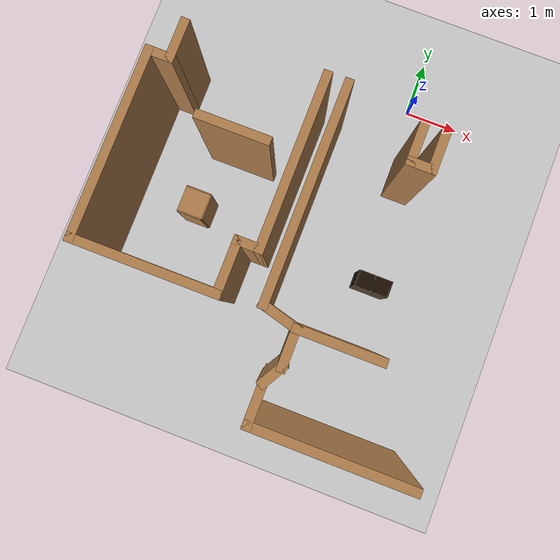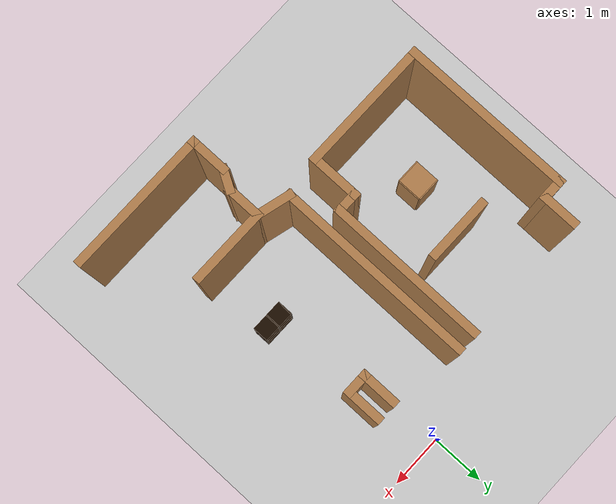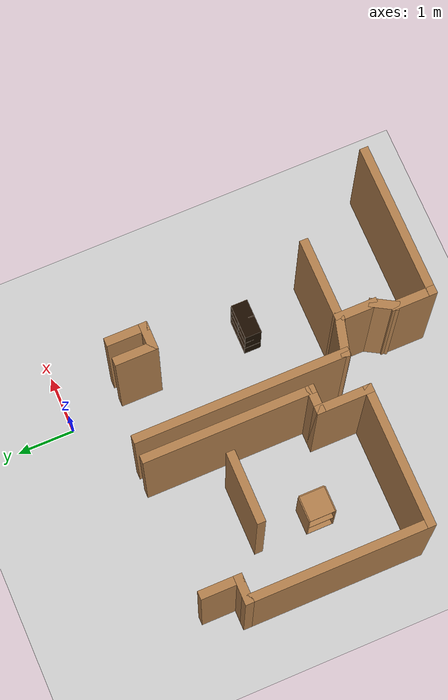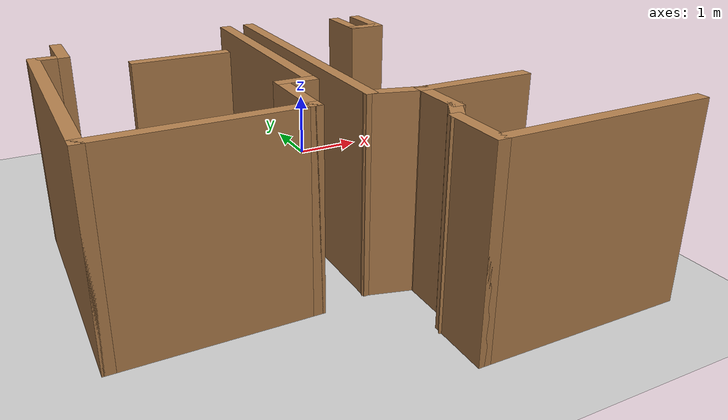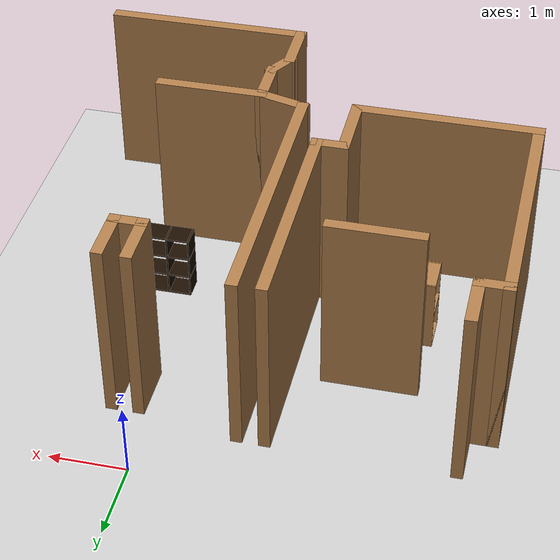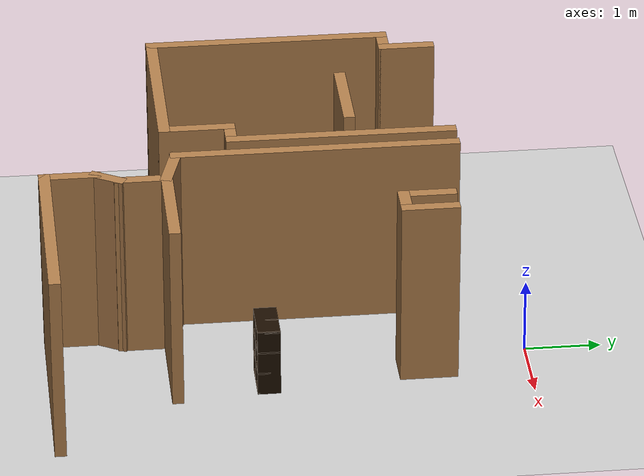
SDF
<sdf version="1.6">
 <world name="default">
  <model name="ground_plane">
   <static>1</static>
   <link name="link">
    <collision name="collision">
     <geometry><plane><normal>0 0 1</normal><size>100 100</size></plane></geometry>
     <surface><friction><ode><mu>100</mu><mu2>50</mu2></ode></friction></surface>
    </collision>
    <visual name="visual">
     <cast_shadows>0</cast_shadows>
     <geometry><plane><normal>0 0 1</normal><size>100 100</size></plane></geometry>
     <material>
      <script><uri>file://media/materials/scripts/gazebo.material</uri><name>Gazebo/Grey</name></script>
     </material>
    </visual>
   </link>
  </model>
  <model name="map_30">
   <link name="Wall_189">
    <pose>-2.30374 -1.6337 0 0 -0 3.14159</pose>
    <visual name="Wall_189_Visual">
     <pose>0 0 1.25 0 -0 0</pose>
     <geometry><box><size>1.25 0.15 2.5</size></box></geometry>
     <material>
      <script><uri>file://media/materials/scripts/gazebo.material</uri><name>Gazebo/Wood</name></script>
      <ambient>1 1 1 1</ambient>
      <shader type="pixel"/>
     </material>
     <meta><layer>0</layer></meta>
    </visual>
    <collision name="Wall_189_Collision">
     <pose>0 0 1.25 0 -0 0</pose>
     <geometry><box><size>1.25 0.15 2.5</size></box></geometry>
     <surface>
      <friction>
       <ode><mu>1</mu><mu2>1</mu2><fdir1>0 0 0</fdir1><slip1>0</slip1><slip2>0</slip2></ode>
       <torsional>
        <coefficient>1</coefficient>
        <patch_radius>0</patch_radius>
        <surface_radius>0</surface_radius>
        <use_patch_radius>1</use_patch_radius>
        <ode><slip>0</slip></ode>
       </torsional>
      </friction>
      <bounce><restitution_coefficient>0</restitution_coefficient><threshold>1e+06</threshold></bounce>
      <contact>
       <collide_without_contact>0</collide_without_contact>
       <collide_without_contact_bitmask>1</collide_without_contact_bitmask>
       <collide_bitmask>1</collide_bitmask>
       <ode>
        <soft_cfm>0</soft_cfm>
        <soft_erp>0.2</soft_erp>
        <kp>1e+13</kp>
        <kd>1</kd>
        <max_vel>0.01</max_vel>
        <min_depth>0</min_depth>
       </ode>
       <bullet>
        <split_impulse>1</split_impulse>
        <split_impulse_penetration_threshold>-0.01</split_impulse_penetration_threshold>
        <soft_cfm>0</soft_cfm>
        <soft_erp>0.2</soft_erp>
        <kp>1e+13</kp>
        <kd>1</kd>
       </bullet>
      </contact>
     </surface>
    </collision>
   </link>
   <link name="Wall_191">
    <pose>0.350366 -4.11681 0 0 -0 0</pose>
    <visual name="Wall_191_Visual">
     <pose>0 0 1.25 0 -0 0</pose>
     <geometry><box><size>1.5 0.15 2.5</size></box></geometry>
     <material>
      <script><uri>file://media/materials/scripts/gazebo.material</uri><name>Gazebo/Wood</name></script>
      <ambient>1 1 1 1</ambient>
      <shader type="pixel"/>
     </material>
     <meta><layer>0</layer></meta>
    </visual>
    <collision name="Wall_191_Collision">
     <pose>0 0 1.25 0 -0 0</pose>
     <geometry><box><size>1.5 0.15 2.5</size></box></geometry>
     <surface>
      <friction>
       <ode><mu>1</mu><mu2>1</mu2><fdir1>0 0 0</fdir1><slip1>0</slip1><slip2>0</slip2></ode>
       <torsional>
        <coefficient>1</coefficient>
        <patch_radius>0</patch_radius>
        <surface_radius>0</surface_radius>
        <use_patch_radius>1</use_patch_radius>
        <ode><slip>0</slip></ode>
       </torsional>
      </friction>
      <bounce><restitution_coefficient>0</restitution_coefficient><threshold>1e+06</threshold></bounce>
      <contact>
       <collide_without_contact>0</collide_without_contact>
       <collide_without_contact_bitmask>1</collide_without_contact_bitmask>
       <collide_bitmask>1</collide_bitmask>
       <ode>
        <soft_cfm>0</soft_cfm>
        <soft_erp>0.2</soft_erp>
        <kp>1e+13</kp>
        <kd>1</kd>
        <max_vel>0.01</max_vel>
        <min_depth>0</min_depth>
       </ode>
       <bullet>
        <split_impulse>1</split_impulse>
        <split_impulse_penetration_threshold>-0.01</split_impulse_penetration_threshold>
        <soft_cfm>0</soft_cfm>
        <soft_erp>0.2</soft_erp>
        <kp>1e+13</kp>
        <kd>1</kd>
       </bullet>
      </contact>
     </surface>
    </collision>
   </link>
   <link name="Wall_195">
    <pose>0.397406 -0.869697 0 0 0 -1.5708</pose>
    <visual name="Wall_195_Visual">
     <pose>0 0 1.25 0 -0 0</pose>
     <geometry><box><size>0.75 0.15 2.5</size></box></geometry>
     <material>
      <script><uri>file://media/materials/scripts/gazebo.material</uri><name>Gazebo/Wood</name></script>
      <ambient>1 1 1 1</ambient>
      <shader type="pixel"/>
     </material>
     <meta><layer>0</layer></meta>
    </visual>
    <collision name="Wall_195_Collision">
     <pose>0 0 1.25 0 -0 0</pose>
     <geometry><box><size>0.75 0.15 2.5</size></box></geometry>
     <surface>
      <friction>
       <ode><mu>1</mu><mu2>1</mu2><fdir1>0 0 0</fdir1><slip1>0</slip1><slip2>0</slip2></ode>
       <torsional>
        <coefficient>1</coefficient>
        <patch_radius>0</patch_radius>
        <surface_radius>0</surface_radius>
        <use_patch_radius>1</use_patch_radius>
        <ode><slip>0</slip></ode>
       </torsional>
      </friction>
      <bounce><restitution_coefficient>0</restitution_coefficient><threshold>1e+06</threshold></bounce>
      <contact>
       <collide_without_contact>0</collide_without_contact>
       <collide_without_contact_bitmask>1</collide_without_contact_bitmask>
       <collide_bitmask>1</collide_bitmask>
       <ode>
        <soft_cfm>0</soft_cfm>
        <soft_erp>0.2</soft_erp>
        <kp>1e+13</kp>
        <kd>1</kd>
        <max_vel>0.01</max_vel>
        <min_depth>0</min_depth>
       </ode>
       <bullet>
        <split_impulse>1</split_impulse>
        <split_impulse_penetration_threshold>-0.01</split_impulse_penetration_threshold>
        <soft_cfm>0</soft_cfm>
        <soft_erp>0.2</soft_erp>
        <kp>1e+13</kp>
        <kd>1</kd>
       </bullet>
      </contact>
     </surface>
    </collision>
   </link>
   <link name="Wall_196">
    <pose>0.572406 -1.1697 0 0 -0 0</pose>
    <visual name="Wall_196_Visual">
     <pose>0 0 1.25 0 -0 0</pose>
     <geometry><box><size>0.5 0.15 2.5</size></box></geometry>
     <material>
      <script><uri>file://media/materials/scripts/gazebo.material</uri><name>Gazebo/Wood</name></script>
      <ambient>1 1 1 1</ambient>
      <shader type="pixel"/>
     </material>
     <meta><layer>0</layer></meta>
    </visual>
    <collision name="Wall_196_Collision">
     <pose>0 0 1.25 0 -0 0</pose>
     <geometry><box><size>0.5 0.15 2.5</size></box></geometry>
     <surface>
      <friction>
       <ode><mu>1</mu><mu2>1</mu2><fdir1>0 0 0</fdir1><slip1>0</slip1><slip2>0</slip2></ode>
       <torsional>
        <coefficient>1</coefficient>
        <patch_radius>0</patch_radius>
        <surface_radius>0</surface_radius>
        <use_patch_radius>1</use_patch_radius>
        <ode><slip>0</slip></ode>
       </torsional>
      </friction>
      <bounce><restitution_coefficient>0</restitution_coefficient><threshold>1e+06</threshold></bounce>
      <contact>
       <collide_without_contact>0</collide_without_contact>
       <collide_without_contact_bitmask>1</collide_without_contact_bitmask>
       <collide_bitmask>1</collide_bitmask>
       <ode>
        <soft_cfm>0</soft_cfm>
        <soft_erp>0.2</soft_erp>
        <kp>1e+13</kp>
        <kd>1</kd>
        <max_vel>0.01</max_vel>
        <min_depth>0</min_depth>
       </ode>
       <bullet>
        <split_impulse>1</split_impulse>
        <split_impulse_penetration_threshold>-0.01</split_impulse_penetration_threshold>
        <soft_cfm>0</soft_cfm>
        <soft_erp>0.2</soft_erp>
        <kp>1e+13</kp>
        <kd>1</kd>
       </bullet>
      </contact>
     </surface>
    </collision>
   </link>
   <link name="Wall_197">
    <pose>0.747406 -0.869697 0 0 -0 1.5708</pose>
    <visual name="Wall_197_Visual">
     <pose>0 0 1.25 0 -0 0</pose>
     <geometry><box><size>0.75 0.15 2.5</size></box></geometry>
     <material>
      <script><uri>file://media/materials/scripts/gazebo.material</uri><name>Gazebo/Wood</name></script>
      <ambient>1 1 1 1</ambient>
      <shader type="pixel"/>
     </material>
     <meta><layer>0</layer></meta>
    </visual>
    <collision name="Wall_197_Collision">
     <pose>0 0 1.25 0 -0 0</pose>
     <geometry><box><size>0.75 0.15 2.5</size></box></geometry>
     <surface>
      <friction>
       <ode><mu>1</mu><mu2>1</mu2><fdir1>0 0 0</fdir1><slip1>0</slip1><slip2>0</slip2></ode>
       <torsional>
        <coefficient>1</coefficient>
        <patch_radius>0</patch_radius>
        <surface_radius>0</surface_radius>
        <use_patch_radius>1</use_patch_radius>
        <ode><slip>0</slip></ode>
       </torsional>
      </friction>
      <bounce><restitution_coefficient>0</restitution_coefficient><threshold>1e+06</threshold></bounce>
      <contact>
       <collide_without_contact>0</collide_without_contact>
       <collide_without_contact_bitmask>1</collide_without_contact_bitmask>
       <collide_bitmask>1</collide_bitmask>
       <ode>
        <soft_cfm>0</soft_cfm>
        <soft_erp>0.2</soft_erp>
        <kp>1e+13</kp>
        <kd>1</kd>
        <max_vel>0.01</max_vel>
        <min_depth>0</min_depth>
       </ode>
       <bullet>
        <split_impulse>1</split_impulse>
        <split_impulse_penetration_threshold>-0.01</split_impulse_penetration_threshold>
        <soft_cfm>0</soft_cfm>
        <soft_erp>0.2</soft_erp>
        <kp>1e+13</kp>
        <kd>1</kd>
       </bullet>
      </contact>
     </surface>
    </collision>
   </link>
   <link name="Wall_42">
    <pose>-3.60419 -0.661521 0 0 0 -1.5708</pose>
    <visual name="Wall_42_Visual">
     <pose>0 0 1.25 0 -0 0</pose>
     <geometry><box><size>0.75 0.15 2.5</size></box></geometry>
     <material>
      <script><uri>file://media/materials/scripts/gazebo.material</uri><name>Gazebo/Wood</name></script>
      <ambient>1 1 1 1</ambient>
      <shader type="pixel"/>
     </material>
     <meta><layer>0</layer></meta>
    </visual>
    <collision name="Wall_42_Collision">
     <pose>0 0 1.25 0 -0 0</pose>
     <geometry><box><size>0.75 0.15 2.5</size></box></geometry>
     <surface>
      <friction>
       <ode><mu>1</mu><mu2>1</mu2><fdir1>0 0 0</fdir1><slip1>0</slip1><slip2>0</slip2></ode>
       <torsional>
        <coefficient>1</coefficient>
        <patch_radius>0</patch_radius>
        <surface_radius>0</surface_radius>
        <use_patch_radius>1</use_patch_radius>
        <ode><slip>0</slip></ode>
       </torsional>
      </friction>
      <bounce><restitution_coefficient>0</restitution_coefficient><threshold>1e+06</threshold></bounce>
      <contact>
       <collide_without_contact>0</collide_without_contact>
       <collide_without_contact_bitmask>1</collide_without_contact_bitmask>
       <collide_bitmask>1</collide_bitmask>
       <ode>
        <soft_cfm>0</soft_cfm>
        <soft_erp>0.2</soft_erp>
        <kp>1e+13</kp>
        <kd>1</kd>
        <max_vel>0.01</max_vel>
        <min_depth>0</min_depth>
       </ode>
       <bullet>
        <split_impulse>1</split_impulse>
        <split_impulse_penetration_threshold>-0.01</split_impulse_penetration_threshold>
        <soft_cfm>0</soft_cfm>
        <soft_erp>0.2</soft_erp>
        <kp>1e+13</kp>
        <kd>1</kd>
       </bullet>
      </contact>
     </surface>
    </collision>
   </link>
   <link name="Wall_43">
    <pose>-3.77919 -0.961521 0 0 -0 3.14159</pose>
    <visual name="Wall_43_Visual">
     <pose>0 0 1.25 0 -0 0</pose>
     <geometry><box><size>0.5 0.15 2.5</size></box></geometry>
     <material>
      <script><uri>file://media/materials/scripts/gazebo.material</uri><name>Gazebo/Wood</name></script>
      <ambient>1 1 1 1</ambient>
      <shader type="pixel"/>
     </material>
     <meta><layer>0</layer></meta>
    </visual>
    <collision name="Wall_43_Collision">
     <pose>0 0 1.25 0 -0 0</pose>
     <geometry><box><size>0.5 0.15 2.5</size></box></geometry>
     <surface>
      <friction>
       <ode><mu>1</mu><mu2>1</mu2><fdir1>0 0 0</fdir1><slip1>0</slip1><slip2>0</slip2></ode>
       <torsional>
        <coefficient>1</coefficient>
        <patch_radius>0</patch_radius>
        <surface_radius>0</surface_radius>
        <use_patch_radius>1</use_patch_radius>
        <ode><slip>0</slip></ode>
       </torsional>
      </friction>
      <bounce><restitution_coefficient>0</restitution_coefficient><threshold>1e+06</threshold></bounce>
      <contact>
       <collide_without_contact>0</collide_without_contact>
       <collide_without_contact_bitmask>1</collide_without_contact_bitmask>
       <collide_bitmask>1</collide_bitmask>
       <ode>
        <soft_cfm>0</soft_cfm>
        <soft_erp>0.2</soft_erp>
        <kp>1e+13</kp>
        <kd>1</kd>
        <max_vel>0.01</max_vel>
        <min_depth>0</min_depth>
       </ode>
       <bullet>
        <split_impulse>1</split_impulse>
        <split_impulse_penetration_threshold>-0.01</split_impulse_penetration_threshold>
        <soft_cfm>0</soft_cfm>
        <soft_erp>0.2</soft_erp>
        <kp>1e+13</kp>
        <kd>1</kd>
       </bullet>
      </contact>
     </surface>
    </collision>
   </link>
   <link name="Wall_44">
    <pose>-3.95419 -2.51152 0 0 0 -1.5708</pose>
    <visual name="Wall_44_Visual">
     <pose>0 0 1.25 0 -0 0</pose>
     <geometry><box><size>3.25 0.15 2.5</size></box></geometry>
     <material>
      <script><uri>file://media/materials/scripts/gazebo.material</uri><name>Gazebo/Wood</name></script>
      <ambient>1 1 1 1</ambient>
      <shader type="pixel"/>
     </material>
     <meta><layer>0</layer></meta>
    </visual>
    <collision name="Wall_44_Collision">
     <pose>0 0 1.25 0 -0 0</pose>
     <geometry><box><size>3.25 0.15 2.5</size></box></geometry>
     <surface>
      <friction>
       <ode><mu>1</mu><mu2>1</mu2><fdir1>0 0 0</fdir1><slip1>0</slip1><slip2>0</slip2></ode>
       <torsional>
        <coefficient>1</coefficient>
        <patch_radius>0</patch_radius>
        <surface_radius>0</surface_radius>
        <use_patch_radius>1</use_patch_radius>
        <ode><slip>0</slip></ode>
       </torsional>
      </friction>
      <bounce><restitution_coefficient>0</restitution_coefficient><threshold>1e+06</threshold></bounce>
      <contact>
       <collide_without_contact>0</collide_without_contact>
       <collide_without_contact_bitmask>1</collide_without_contact_bitmask>
       <collide_bitmask>1</collide_bitmask>
       <ode>
        <soft_cfm>0</soft_cfm>
        <soft_erp>0.2</soft_erp>
        <kp>1e+13</kp>
        <kd>1</kd>
        <max_vel>0.01</max_vel>
        <min_depth>0</min_depth>
       </ode>
       <bullet>
        <split_impulse>1</split_impulse>
        <split_impulse_penetration_threshold>-0.01</split_impulse_penetration_threshold>
        <soft_cfm>0</soft_cfm>
        <soft_erp>0.2</soft_erp>
        <kp>1e+13</kp>
        <kd>1</kd>
       </bullet>
      </contact>
     </surface>
    </collision>
   </link>
   <link name="Wall_47">
    <pose>-2.77919 -4.06152 0 0 -0 0</pose>
    <visual name="Wall_47_Visual">
     <pose>0 0 1.25 0 -0 0</pose>
     <geometry><box><size>2.5 0.15 2.5</size></box></geometry>
     <material>
      <script><uri>file://media/materials/scripts/gazebo.material</uri><name>Gazebo/Wood</name></script>
      <ambient>1 1 1 1</ambient>
      <shader type="pixel"/>
     </material>
     <meta><layer>0</layer></meta>
    </visual>
    <collision name="Wall_47_Collision">
     <pose>0 0 1.25 0 -0 0</pose>
     <geometry><box><size>2.5 0.15 2.5</size></box></geometry>
     <surface>
      <friction>
       <ode><mu>1</mu><mu2>1</mu2><fdir1>0 0 0</fdir1><slip1>0</slip1><slip2>0</slip2></ode>
       <torsional>
        <coefficient>1</coefficient>
        <patch_radius>0</patch_radius>
        <surface_radius>0</surface_radius>
        <use_patch_radius>1</use_patch_radius>
        <ode><slip>0</slip></ode>
       </torsional>
      </friction>
      <bounce><restitution_coefficient>0</restitution_coefficient><threshold>1e+06</threshold></bounce>
      <contact>
       <collide_without_contact>0</collide_without_contact>
       <collide_without_contact_bitmask>1</collide_without_contact_bitmask>
       <collide_bitmask>1</collide_bitmask>
       <ode>
        <soft_cfm>0</soft_cfm>
        <soft_erp>0.2</soft_erp>
        <kp>1e+13</kp>
        <kd>1</kd>
        <max_vel>0.01</max_vel>
        <min_depth>0</min_depth>
       </ode>
       <bullet>
        <split_impulse>1</split_impulse>
        <split_impulse_penetration_threshold>-0.01</split_impulse_penetration_threshold>
        <soft_cfm>0</soft_cfm>
        <soft_erp>0.2</soft_erp>
        <kp>1e+13</kp>
        <kd>1</kd>
       </bullet>
      </contact>
     </surface>
    </collision>
   </link>
   <link name="Wall_48">
    <pose>-1.60419 -3.63652 0 0 -0 1.5708</pose>
    <visual name="Wall_48_Visual">
     <pose>0 0 1.25 0 -0 0</pose>
     <geometry><box><size>1 0.15 2.5</size></box></geometry>
     <material>
      <script><uri>file://media/materials/scripts/gazebo.material</uri><name>Gazebo/Wood</name></script>
      <ambient>1 1 1 1</ambient>
      <shader type="pixel"/>
     </material>
     <meta><layer>0</layer></meta>
    </visual>
    <collision name="Wall_48_Collision">
     <pose>0 0 1.25 0 -0 0</pose>
     <geometry><box><size>1 0.15 2.5</size></box></geometry>
     <surface>
      <friction>
       <ode><mu>1</mu><mu2>1</mu2><fdir1>0 0 0</fdir1><slip1>0</slip1><slip2>0</slip2></ode>
       <torsional>
        <coefficient>1</coefficient>
        <patch_radius>0</patch_radius>
        <surface_radius>0</surface_radius>
        <use_patch_radius>1</use_patch_radius>
        <ode><slip>0</slip></ode>
       </torsional>
      </friction>
      <bounce><restitution_coefficient>0</restitution_coefficient><threshold>1e+06</threshold></bounce>
      <contact>
       <collide_without_contact>0</collide_without_contact>
       <collide_without_contact_bitmask>1</collide_without_contact_bitmask>
       <collide_bitmask>1</collide_bitmask>
       <ode>
        <soft_cfm>0</soft_cfm>
        <soft_erp>0.2</soft_erp>
        <kp>1e+13</kp>
        <kd>1</kd>
        <max_vel>0.01</max_vel>
        <min_depth>0</min_depth>
       </ode>
       <bullet>
        <split_impulse>1</split_impulse>
        <split_impulse_penetration_threshold>-0.01</split_impulse_penetration_threshold>
        <soft_cfm>0</soft_cfm>
        <soft_erp>0.2</soft_erp>
        <kp>1e+13</kp>
        <kd>1</kd>
       </bullet>
      </contact>
     </surface>
    </collision>
   </link>
   <link name="Wall_49">
    <pose>-1.42919 -3.21152 0 0 -0 0</pose>
    <visual name="Wall_49_Visual">
     <pose>0 0 1.25 0 -0 0</pose>
     <geometry><box><size>0.5 0.15 2.5</size></box></geometry>
     <material>
      <script><uri>file://media/materials/scripts/gazebo.material</uri><name>Gazebo/Wood</name></script>
      <ambient>1 1 1 1</ambient>
      <shader type="pixel"/>
     </material>
     <meta><layer>0</layer></meta>
    </visual>
    <collision name="Wall_49_Collision">
     <pose>0 0 1.25 0 -0 0</pose>
     <geometry><box><size>0.5 0.15 2.5</size></box></geometry>
     <surface>
      <friction>
       <ode><mu>1</mu><mu2>1</mu2><fdir1>0 0 0</fdir1><slip1>0</slip1><slip2>0</slip2></ode>
       <torsional>
        <coefficient>1</coefficient>
        <patch_radius>0</patch_radius>
        <surface_radius>0</surface_radius>
        <use_patch_radius>1</use_patch_radius>
        <ode><slip>0</slip></ode>
       </torsional>
      </friction>
      <bounce><restitution_coefficient>0</restitution_coefficient><threshold>1e+06</threshold></bounce>
      <contact>
       <collide_without_contact>0</collide_without_contact>
       <collide_without_contact_bitmask>1</collide_without_contact_bitmask>
       <collide_bitmask>1</collide_bitmask>
       <ode>
        <soft_cfm>0</soft_cfm>
        <soft_erp>0.2</soft_erp>
        <kp>1e+13</kp>
        <kd>1</kd>
        <max_vel>0.01</max_vel>
        <min_depth>0</min_depth>
       </ode>
       <bullet>
        <split_impulse>1</split_impulse>
        <split_impulse_penetration_threshold>-0.01</split_impulse_penetration_threshold>
        <soft_cfm>0</soft_cfm>
        <soft_erp>0.2</soft_erp>
        <kp>1e+13</kp>
        <kd>1</kd>
       </bullet>
      </contact>
     </surface>
    </collision>
   </link>
   <link name="Wall_50">
    <pose>-1.25419 -1.78652 0 0 -0 1.5708</pose>
    <visual name="Wall_50_Visual">
     <pose>0 0 1.25 0 -0 0</pose>
     <geometry><box><size>3 0.15 2.5</size></box></geometry>
     <material>
      <script><uri>file://media/materials/scripts/gazebo.material</uri><name>Gazebo/Wood</name></script>
      <ambient>1 1 1 1</ambient>
      <shader type="pixel"/>
     </material>
     <meta><layer>0</layer></meta>
    </visual>
    <collision name="Wall_50_Collision">
     <pose>0 0 1.25 0 -0 0</pose>
     <geometry><box><size>3 0.15 2.5</size></box></geometry>
     <surface>
      <friction>
       <ode><mu>1</mu><mu2>1</mu2><fdir1>0 0 0</fdir1><slip1>0</slip1><slip2>0</slip2></ode>
       <torsional>
        <coefficient>1</coefficient>
        <patch_radius>0</patch_radius>
        <surface_radius>0</surface_radius>
        <use_patch_radius>1</use_patch_radius>
        <ode><slip>0</slip></ode>
       </torsional>
      </friction>
      <bounce><restitution_coefficient>0</restitution_coefficient><threshold>1e+06</threshold></bounce>
      <contact>
       <collide_without_contact>0</collide_without_contact>
       <collide_without_contact_bitmask>1</collide_without_contact_bitmask>
       <collide_bitmask>1</collide_bitmask>
       <ode>
        <soft_cfm>0</soft_cfm>
        <soft_erp>0.2</soft_erp>
        <kp>1e+13</kp>
        <kd>1</kd>
        <max_vel>0.01</max_vel>
        <min_depth>0</min_depth>
       </ode>
       <bullet>
        <split_impulse>1</split_impulse>
        <split_impulse_penetration_threshold>-0.01</split_impulse_penetration_threshold>
        <soft_cfm>0</soft_cfm>
        <soft_erp>0.2</soft_erp>
        <kp>1e+13</kp>
        <kd>1</kd>
       </bullet>
      </contact>
     </surface>
    </collision>
   </link>
   <link name="Wall_54">
    <pose>-0.904189 -2.16152 0 0 0 -1.5708</pose>
    <visual name="Wall_54_Visual">
     <pose>0 0 1.25 0 -0 0</pose>
     <geometry><box><size>3.75 0.15 2.5</size></box></geometry>
     <material>
      <script><uri>file://media/materials/scripts/gazebo.material</uri><name>Gazebo/Wood</name></script>
      <ambient>1 1 1 1</ambient>
      <shader type="pixel"/>
     </material>
     <meta><layer>0</layer></meta>
    </visual>
    <collision name="Wall_54_Collision">
     <pose>0 0 1.25 0 -0 0</pose>
     <geometry><box><size>3.75 0.15 2.5</size></box></geometry>
     <surface>
      <friction>
       <ode><mu>1</mu><mu2>1</mu2><fdir1>0 0 0</fdir1><slip1>0</slip1><slip2>0</slip2></ode>
       <torsional>
        <coefficient>1</coefficient>
        <patch_radius>0</patch_radius>
        <surface_radius>0</surface_radius>
        <use_patch_radius>1</use_patch_radius>
        <ode><slip>0</slip></ode>
       </torsional>
      </friction>
      <bounce><restitution_coefficient>0</restitution_coefficient><threshold>1e+06</threshold></bounce>
      <contact>
       <collide_without_contact>0</collide_without_contact>
       <collide_without_contact_bitmask>1</collide_without_contact_bitmask>
       <collide_bitmask>1</collide_bitmask>
       <ode>
        <soft_cfm>0</soft_cfm>
        <soft_erp>0.2</soft_erp>
        <kp>1e+13</kp>
        <kd>1</kd>
        <max_vel>0.01</max_vel>
        <min_depth>0</min_depth>
       </ode>
       <bullet>
        <split_impulse>1</split_impulse>
        <split_impulse_penetration_threshold>-0.01</split_impulse_penetration_threshold>
        <soft_cfm>0</soft_cfm>
        <soft_erp>0.2</soft_erp>
        <kp>1e+13</kp>
        <kd>1</kd>
       </bullet>
      </contact>
     </surface>
    </collision>
   </link>
   <link name="Wall_55">
    <pose>-0.614412 -4.03917 0 0 0 -0.261799</pose>
    <visual name="Wall_55_Visual">
     <pose>0 0 1.25 0 -0 0</pose>
     <geometry><box><size>0.75 0.15 2.5</size></box></geometry>
     <material>
      <script><uri>file://media/materials/scripts/gazebo.material</uri><name>Gazebo/Wood</name></script>
      <ambient>1 1 1 1</ambient>
      <shader type="pixel"/>
     </material>
     <meta><layer>0</layer></meta>
    </visual>
    <collision name="Wall_55_Collision">
     <pose>0 0 1.25 0 -0 0</pose>
     <geometry><box><size>0.75 0.15 2.5</size></box></geometry>
     <surface>
      <friction>
       <ode><mu>1</mu><mu2>1</mu2><fdir1>0 0 0</fdir1><slip1>0</slip1><slip2>0</slip2></ode>
       <torsional>
        <coefficient>1</coefficient>
        <patch_radius>0</patch_radius>
        <surface_radius>0</surface_radius>
        <use_patch_radius>1</use_patch_radius>
        <ode><slip>0</slip></ode>
       </torsional>
      </friction>
      <bounce><restitution_coefficient>0</restitution_coefficient><threshold>1e+06</threshold></bounce>
      <contact>
       <collide_without_contact>0</collide_without_contact>
       <collide_without_contact_bitmask>1</collide_without_contact_bitmask>
       <collide_bitmask>1</collide_bitmask>
       <ode>
        <soft_cfm>0</soft_cfm>
        <soft_erp>0.2</soft_erp>
        <kp>1e+13</kp>
        <kd>1</kd>
        <max_vel>0.01</max_vel>
        <min_depth>0</min_depth>
       </ode>
       <bullet>
        <split_impulse>1</split_impulse>
        <split_impulse_penetration_threshold>-0.01</split_impulse_penetration_threshold>
        <soft_cfm>0</soft_cfm>
        <soft_erp>0.2</soft_erp>
        <kp>1e+13</kp>
        <kd>1</kd>
       </bullet>
      </contact>
     </surface>
    </collision>
   </link>
   <link name="Wall_56">
    <pose>-0.324634 -4.41681 0 0 0 -1.5708</pose>
    <visual name="Wall_56_Visual">
     <pose>0 0 1.25 0 -0 0</pose>
     <geometry><box><size>0.75 0.15 2.5</size></box></geometry>
     <material>
      <script><uri>file://media/materials/scripts/gazebo.material</uri><name>Gazebo/Wood</name></script>
      <ambient>1 1 1 1</ambient>
      <shader type="pixel"/>
     </material>
     <meta><layer>0</layer></meta>
    </visual>
    <collision name="Wall_56_Collision">
     <pose>0 0 1.25 0 -0 0</pose>
     <geometry><box><size>0.75 0.15 2.5</size></box></geometry>
     <surface>
      <friction>
       <ode><mu>1</mu><mu2>1</mu2><fdir1>0 0 0</fdir1><slip1>0</slip1><slip2>0</slip2></ode>
       <torsional>
        <coefficient>1</coefficient>
        <patch_radius>0</patch_radius>
        <surface_radius>0</surface_radius>
        <use_patch_radius>1</use_patch_radius>
        <ode><slip>0</slip></ode>
       </torsional>
      </friction>
      <bounce><restitution_coefficient>0</restitution_coefficient><threshold>1e+06</threshold></bounce>
      <contact>
       <collide_without_contact>0</collide_without_contact>
       <collide_without_contact_bitmask>1</collide_without_contact_bitmask>
       <collide_bitmask>1</collide_bitmask>
       <ode>
        <soft_cfm>0</soft_cfm>
        <soft_erp>0.2</soft_erp>
        <kp>1e+13</kp>
        <kd>1</kd>
        <max_vel>0.01</max_vel>
        <min_depth>0</min_depth>
       </ode>
       <bullet>
        <split_impulse>1</split_impulse>
        <split_impulse_penetration_threshold>-0.01</split_impulse_penetration_threshold>
        <soft_cfm>0</soft_cfm>
        <soft_erp>0.2</soft_erp>
        <kp>1e+13</kp>
        <kd>1</kd>
       </bullet>
      </contact>
     </surface>
    </collision>
   </link>
   <link name="Wall_59">
    <pose>-0.412134 -4.86837 0 0 0 -2.0944</pose>
    <visual name="Wall_59_Visual">
     <pose>0 0 1.25 0 -0 0</pose>
     <geometry><box><size>0.5 0.15 2.5</size></box></geometry>
     <material>
      <script><uri>file://media/materials/scripts/gazebo.material</uri><name>Gazebo/Wood</name></script>
      <ambient>1 1 1 1</ambient>
      <shader type="pixel"/>
     </material>
     <meta><layer>0</layer></meta>
    </visual>
    <collision name="Wall_59_Collision">
     <pose>0 0 1.25 0 -0 0</pose>
     <geometry><box><size>0.5 0.15 2.5</size></box></geometry>
     <surface>
      <friction>
       <ode><mu>1</mu><mu2>1</mu2><fdir1>0 0 0</fdir1><slip1>0</slip1><slip2>0</slip2></ode>
       <torsional>
        <coefficient>1</coefficient>
        <patch_radius>0</patch_radius>
        <surface_radius>0</surface_radius>
        <use_patch_radius>1</use_patch_radius>
        <ode><slip>0</slip></ode>
       </torsional>
      </friction>
      <bounce><restitution_coefficient>0</restitution_coefficient><threshold>1e+06</threshold></bounce>
      <contact>
       <collide_without_contact>0</collide_without_contact>
       <collide_without_contact_bitmask>1</collide_without_contact_bitmask>
       <collide_bitmask>1</collide_bitmask>
       <ode>
        <soft_cfm>0</soft_cfm>
        <soft_erp>0.2</soft_erp>
        <kp>1e+13</kp>
        <kd>1</kd>
        <max_vel>0.01</max_vel>
        <min_depth>0</min_depth>
       </ode>
       <bullet>
        <split_impulse>1</split_impulse>
        <split_impulse_penetration_threshold>-0.01</split_impulse_penetration_threshold>
        <soft_cfm>0</soft_cfm>
        <soft_erp>0.2</soft_erp>
        <kp>1e+13</kp>
        <kd>1</kd>
       </bullet>
      </contact>
     </surface>
    </collision>
   </link>
   <link name="Wall_60">
    <pose>-0.499634 -5.34305 0 0 0 -1.5708</pose>
    <visual name="Wall_60_Visual">
     <pose>0 0 1.25 0 -0 0</pose>
     <geometry><box><size>0.796261 0.15 2.5</size></box></geometry>
     <material>
      <script><uri>file://media/materials/scripts/gazebo.material</uri><name>Gazebo/Wood</name></script>
      <ambient>1 1 1 1</ambient>
      <shader type="pixel"/>
     </material>
     <meta><layer>0</layer></meta>
    </visual>
    <collision name="Wall_60_Collision">
     <pose>0 0 1.25 0 -0 0</pose>
     <geometry><box><size>0.796261 0.15 2.5</size></box></geometry>
     <surface>
      <friction>
       <ode><mu>1</mu><mu2>1</mu2><fdir1>0 0 0</fdir1><slip1>0</slip1><slip2>0</slip2></ode>
       <torsional>
        <coefficient>1</coefficient>
        <patch_radius>0</patch_radius>
        <surface_radius>0</surface_radius>
        <use_patch_radius>1</use_patch_radius>
        <ode><slip>0</slip></ode>
       </torsional>
      </friction>
      <bounce><restitution_coefficient>0</restitution_coefficient><threshold>1e+06</threshold></bounce>
      <contact>
       <collide_without_contact>0</collide_without_contact>
       <collide_without_contact_bitmask>1</collide_without_contact_bitmask>
       <collide_bitmask>1</collide_bitmask>
       <ode>
        <soft_cfm>0</soft_cfm>
        <soft_erp>0.2</soft_erp>
        <kp>1e+13</kp>
        <kd>1</kd>
        <max_vel>0.01</max_vel>
        <min_depth>0</min_depth>
       </ode>
       <bullet>
        <split_impulse>1</split_impulse>
        <split_impulse_penetration_threshold>-0.01</split_impulse_penetration_threshold>
        <soft_cfm>0</soft_cfm>
        <soft_erp>0.2</soft_erp>
        <kp>1e+13</kp>
        <kd>1</kd>
       </bullet>
      </contact>
     </surface>
    </collision>
   </link>
   <link name="Wall_67">
    <pose>0.800366 -5.66618 0 0 -0 0</pose>
    <visual name="Wall_67_Visual">
     <pose>0 0 1.25 0 -0 0</pose>
     <geometry><box><size>2.75 0.15 2.5</size></box></geometry>
     <material>
      <script><uri>file://media/materials/scripts/gazebo.material</uri><name>Gazebo/Wood</name></script>
      <ambient>1 1 1 1</ambient>
      <shader type="pixel"/>
     </material>
     <meta><layer>0</layer></meta>
    </visual>
    <collision name="Wall_67_Collision">
     <pose>0 0 1.25 0 -0 0</pose>
     <geometry><box><size>2.75 0.15 2.5</size></box></geometry>
     <surface>
      <friction>
       <ode><mu>1</mu><mu2>1</mu2><fdir1>0 0 0</fdir1><slip1>0</slip1><slip2>0</slip2></ode>
       <torsional>
        <coefficient>1</coefficient>
        <patch_radius>0</patch_radius>
        <surface_radius>0</surface_radius>
        <use_patch_radius>1</use_patch_radius>
        <ode><slip>0</slip></ode>
       </torsional>
      </friction>
      <bounce><restitution_coefficient>0</restitution_coefficient><threshold>1e+06</threshold></bounce>
      <contact>
       <collide_without_contact>0</collide_without_contact>
       <collide_without_contact_bitmask>1</collide_without_contact_bitmask>
       <collide_bitmask>1</collide_bitmask>
       <ode>
        <soft_cfm>0</soft_cfm>
        <soft_erp>0.2</soft_erp>
        <kp>1e+13</kp>
        <kd>1</kd>
        <max_vel>0.01</max_vel>
        <min_depth>0</min_depth>
       </ode>
       <bullet>
        <split_impulse>1</split_impulse>
        <split_impulse_penetration_threshold>-0.01</split_impulse_penetration_threshold>
        <soft_cfm>0</soft_cfm>
        <soft_erp>0.2</soft_erp>
        <kp>1e+13</kp>
        <kd>1</kd>
       </bullet>
      </contact>
     </surface>
    </collision>
   </link>
   <static>1</static>
   <pose>-0.242413 -0.443035 0 0 -0 0</pose>
  </model>
  <model name="6_Cube_StorageE_0">
   <link name="Wall_0">
    <pose>0 0 0.01 0 -0 0</pose>
    <inertial>
     <mass>1.6201</mass>
     <inertia><ixx>0.0119</ixx><iyy>0.0631</iyy><izz>0.0513</izz><ixy>0</ixy><ixz>0</ixz><iyz>0</iyz></inertia>
    </inertial>
    <collision name="Wall_0_Collision"><geometry><box><size>0.616 0.296 0.02</size></box></geometry></collision>
    <visual name="Wall_0_Visual">
     <geometry><box><size>0.616 0.296 0.02</size></box></geometry>
     <material>
      <script><uri>file://media/materials/scripts/gazebo.material</uri><name>Gazebo/Grey</name></script>
      <ambient>0.105882 0.0509804 0 1</ambient>
     </material>
    </visual>
   </link>
   <joint name="0_2" type="fixed">
    <pose>-0.308 0 0 0 -0 0</pose>
    <parent>Wall_2</parent>
    <child>Wall_0</child>
    <axis>
     <xyz>1 0 0</xyz>
     <use_parent_model_frame>0</use_parent_model_frame>
     <limit><lower>-1e+16</lower><upper>1e+16</upper></limit>
    </axis>
   </joint>
   <joint name="0_12" type="fixed">
    <parent>Wall_12</parent>
    <child>Wall_0</child>
    <axis>
     <xyz>0 0 1</xyz>
     <use_parent_model_frame>0</use_parent_model_frame>
     <limit><lower>-1e+16</lower><upper>1e+16</upper></limit>
    </axis>
   </joint>
   <joint name="0_4" type="fixed">
    <pose>0.308 0 0 0 -0 0</pose>
    <parent>Wall_4</parent>
    <child>Wall_0</child>
    <axis>
     <xyz>1 0 0</xyz>
     <use_parent_model_frame>0</use_parent_model_frame>
     <limit><lower>-1e+16</lower><upper>1e+16</upper></limit>
    </axis>
   </joint>
   <link name="Wall_10">
    <pose>0 0 0.61 0 -0 0</pose>
    <inertial>
     <mass>1.6201</mass>
     <inertia><ixx>0.0119</ixx><iyy>0.0631</iyy><izz>0.0513</izz><ixy>0</ixy><ixz>0</ixz><iyz>0</iyz></inertia>
    </inertial>
    <collision name="Wall_10_Collision"><geometry><box><size>0.616 0.296 0.02</size></box></geometry></collision>
    <visual name="Wall_10_Visual">
     <geometry><box><size>0.616 0.296 0.02</size></box></geometry>
     <material>
      <script><uri>file://media/materials/scripts/gazebo.material</uri><name>Gazebo/Grey</name></script>
      <ambient>0.105882 0.0509804 0 1</ambient>
     </material>
    </visual>
   </link>
   <joint name="10_2" type="fixed">
    <pose>-0.308 0 0 0 -0 0</pose>
    <parent>Wall_2</parent>
    <child>Wall_10</child>
    <axis>
     <xyz>1 0 0</xyz>
     <use_parent_model_frame>0</use_parent_model_frame>
     <limit><lower>-1e+16</lower><upper>1e+16</upper></limit>
    </axis>
   </joint>
   <joint name="10_12" type="fixed">
    <parent>Wall_12</parent>
    <child>Wall_10</child>
    <axis>
     <xyz>0 0 1</xyz>
     <use_parent_model_frame>0</use_parent_model_frame>
     <limit><lower>-1e+16</lower><upper>1e+16</upper></limit>
    </axis>
   </joint>
   <joint name="10_4" type="fixed">
    <pose>0.308 0 0 0 -0 0</pose>
    <parent>Wall_4</parent>
    <child>Wall_10</child>
    <axis>
     <xyz>1 0 0</xyz>
     <use_parent_model_frame>0</use_parent_model_frame>
     <limit><lower>-1e+16</lower><upper>1e+16</upper></limit>
    </axis>
   </joint>
   <link name="Wall_12">
    <pose>0 0 0.4575 0 -0 0</pose>
    <inertial>
     <mass>2.4065</mass>
     <inertia><ixx>0.0177</ixx><iyy>0.1855</iyy><izz>0.168</izz><ixy>0</ixy><ixz>0</ixz><iyz>0</iyz></inertia>
    </inertial>
    <collision name="Wall_12_Collision"><geometry><box><size>0.02 0.296 0.915</size></box></geometry></collision>
    <visual name="Wall_12_Visual">
     <geometry><box><size>0.02 0.296 0.915</size></box></geometry>
     <material>
      <script><uri>file://media/materials/scripts/gazebo.material</uri><name>Gazebo/Grey</name></script>
      <ambient>0.105882 0.0509804 0 1</ambient>
     </material>
    </visual>
   </link>
   <link name="Wall_2">
    <pose>-0.298 0 0.4575 0 -0 0</pose>
    <inertial>
     <mass>2.4065</mass>
     <inertia><ixx>0.0177</ixx><iyy>0.1855</iyy><izz>0.168</izz><ixy>0</ixy><ixz>0</ixz><iyz>0</iyz></inertia>
    </inertial>
    <collision name="Wall_2_Collision"><geometry><box><size>0.02 0.296 0.915</size></box></geometry></collision>
    <visual name="Wall_2_Visual">
     <geometry><box><size>0.02 0.296 0.915</size></box></geometry>
     <material>
      <script><uri>file://media/materials/scripts/gazebo.material</uri><name>Gazebo/Grey</name></script>
      <ambient>0.105882 0.0509804 0 1</ambient>
     </material>
    </visual>
   </link>
   <link name="Wall_4">
    <pose>0.298 0 0.4575 0 -0 0</pose>
    <inertial>
     <mass>2.4065</mass>
     <inertia><ixx>0.0177</ixx><iyy>0.1855</iyy><izz>0.168</izz><ixy>0</ixy><ixz>0</ixz><iyz>0</iyz></inertia>
    </inertial>
    <collision name="Wall_4_Collision"><geometry><box><size>0.02 0.296 0.915</size></box></geometry></collision>
    <visual name="Wall_4_Visual">
     <geometry><box><size>0.02 0.296 0.915</size></box></geometry>
     <material>
      <script><uri>file://media/materials/scripts/gazebo.material</uri><name>Gazebo/Grey</name></script>
      <ambient>0.105882 0.0509804 0 1</ambient>
     </material>
    </visual>
   </link>
   <link name="Wall_6">
    <pose>0 0 0.905 0 -0 0</pose>
    <inertial>
     <mass>1.6201</mass>
     <inertia><ixx>0.0119</ixx><iyy>0.0631</iyy><izz>0.0513</izz><ixy>0</ixy><ixz>0</ixz><iyz>0</iyz></inertia>
    </inertial>
    <collision name="Wall_6_Collision"><geometry><box><size>0.616 0.296 0.02</size></box></geometry></collision>
    <visual name="Wall_6_Visual">
     <geometry><box><size>0.616 0.296 0.02</size></box></geometry>
     <material>
      <script><uri>file://media/materials/scripts/gazebo.material</uri><name>Gazebo/Grey</name></script>
      <ambient>0.105882 0.0509804 0 1</ambient>
     </material>
    </visual>
   </link>
   <joint name="6_2" type="fixed">
    <pose>-0.308 0 0 0 -0 0</pose>
    <parent>Wall_2</parent>
    <child>Wall_6</child>
    <axis>
     <xyz>2 0 0</xyz>
     <use_parent_model_frame>0</use_parent_model_frame>
     <limit><lower>-1e+16</lower><upper>1e+16</upper></limit>
    </axis>
   </joint>
   <joint name="6_12" type="fixed">
    <parent>Wall_12</parent>
    <child>Wall_6</child>
    <axis>
     <xyz>0 0 1</xyz>
     <use_parent_model_frame>0</use_parent_model_frame>
     <limit><lower>-1e+16</lower><upper>1e+16</upper></limit>
    </axis>
   </joint>
   <joint name="6_4" type="fixed">
    <pose>0.308 0 0 0 -0 0</pose>
    <parent>Wall_4</parent>
    <child>Wall_6</child>
    <axis>
     <xyz>1 0 0</xyz>
     <use_parent_model_frame>0</use_parent_model_frame>
     <limit><lower>-1e+16</lower><upper>1e+16</upper></limit>
    </axis>
   </joint>
   <link name="Wall_8">
    <pose>0 0 0.305 0 -0 0</pose>
    <inertial>
     <mass>1.6201</mass>
     <inertia><ixx>0.0119</ixx><iyy>0.0631</iyy><izz>0.0513</izz><ixy>0</ixy><ixz>0</ixz><iyz>0</iyz></inertia>
    </inertial>
    <collision name="Wall_8_Collision"><geometry><box><size>0.616 0.296 0.02</size></box></geometry></collision>
    <visual name="Wall_8_Visual">
     <geometry><box><size>0.616 0.296 0.02</size></box></geometry>
     <material>
      <script><uri>file://media/materials/scripts/gazebo.material</uri><name>Gazebo/Grey</name></script>
      <ambient>0.105882 0.0509804 0 1</ambient>
     </material>
    </visual>
   </link>
   <joint name="8_2" type="fixed">
    <pose>-0.308 0 0 0 -0 0</pose>
    <parent>Wall_2</parent>
    <child>Wall_8</child>
    <axis>
     <xyz>1 0 0</xyz>
     <use_parent_model_frame>0</use_parent_model_frame>
     <limit><lower>-1e+16</lower><upper>1e+16</upper></limit>
    </axis>
   </joint>
   <joint name="8_12" type="fixed">
    <parent>Wall_12</parent>
    <child>Wall_8</child>
    <axis>
     <xyz>0 0 1</xyz>
     <use_parent_model_frame>0</use_parent_model_frame>
     <limit><lower>-1e+16</lower><upper>1e+16</upper></limit>
    </axis>
   </joint>
   <joint name="8_4" type="fixed">
    <pose>0.308 0 0 0 -0 0</pose>
    <parent>Wall_4</parent>
    <child>Wall_8</child>
    <axis>
     <xyz>1 0 0</xyz>
     <use_parent_model_frame>0</use_parent_model_frame>
     <limit><lower>-1e+16</lower><upper>1e+16</upper></limit>
    </axis>
   </joint>
   <static>1</static>
   <pose>0.433405 -3.38738 0 0 -0 0</pose>
  </model>
  <model name="cabinet">
   <static>1</static>
   <link name="cabinet_bottom_plate">
    <inertial>
     <pose>0 0 -1 0 -0 0</pose>
     <inertia><ixx>2.05</ixx><ixy>0</ixy><ixz>0</ixz><iyy>2.05</iyy><iyz>0</iyz><izz>2.05</izz></inertia>
     <mass>25</mass>
    </inertial>
    <collision name="cabinet_bottom_plate_geom">
     <pose>0 0 0.01 0 -0 0</pose>
     <geometry><box><size>0.45 0.45 0.02</size></box></geometry>
    </collision>
    <visual name="cabinet_bottom_plate_geom_visual">
     <pose>0 0 0.01 0 -0 0</pose>
     <geometry><box><size>0.45 0.45 0.02</size></box></geometry>
     <material>
      <script><uri>file://media/materials/scripts/gazebo.material</uri><name>Gazebo/Wood</name></script>
     </material>
    </visual>
    <collision name="cabinet_bottom_plate_geom_cabinet_back_plate">
     <pose>0.235 0 0.51 0 -0 0</pose>
     <geometry><box><size>0.02 0.45 1.02</size></box></geometry>
    </collision>
    <visual name="cabinet_bottom_plate_geom_cabinet_back_plate_visual">
     <pose>0.235 0 0.51 0 -0 0</pose>
     <geometry><box><size>0.02 0.45 1.02</size></box></geometry>
     <material>
      <script><uri>file://media/materials/scripts/gazebo.material</uri><name>Gazebo/Wood</name></script>
     </material>
    </visual>
    <collision name="cabinet_bottom_plate_geom_cabinet_left_plate">
     <pose>0 0.235 0.51 0 -0 0</pose>
     <geometry><box><size>0.45 0.02 1.02</size></box></geometry>
    </collision>
    <visual name="cabinet_bottom_plate_geom_cabinet_left_plate_visual">
     <pose>0 0.235 0.51 0 -0 0</pose>
     <geometry><box><size>0.45 0.02 1.02</size></box></geometry>
     <material>
      <script><uri>file://media/materials/scripts/gazebo.material</uri><name>Gazebo/Wood</name></script>
     </material>
    </visual>
    <collision name="cabinet_bottom_plate_geom_cabinet_middle_plate">
     <pose>0 0 0.51 0 -0 0</pose>
     <geometry><box><size>0.45 0.45 0.02</size></box></geometry>
    </collision>
    <visual name="cabinet_bottom_plate_geom_cabinet_middle_plate_visual">
     <pose>0 0 0.51 0 -0 0</pose>
     <geometry><box><size>0.45 0.45 0.02</size></box></geometry>
     <material>
      <script><uri>file://media/materials/scripts/gazebo.material</uri><name>Gazebo/Wood</name></script>
     </material>
    </visual>
    <collision name="cabinet_bottom_plate_geom_cabinet_right_plate">
     <pose>0 -0.235 0.51 0 -0 0</pose>
     <geometry><box><size>0.45 0.02 1.02</size></box></geometry>
    </collision>
    <visual name="cabinet_bottom_plate_geom_cabinet_right_plate_visual">
     <pose>0 -0.235 0.51 0 -0 0</pose>
     <geometry><box><size>0.45 0.02 1.02</size></box></geometry>
     <material>
      <script><uri>file://media/materials/scripts/gazebo.material</uri><name>Gazebo/Wood</name></script>
     </material>
    </visual>
    <collision name="cabinet_bottom_plate_geom_cabinet_top_plate">
     <pose>0 0 1.01 0 -0 0</pose>
     <geometry><box><size>0.45 0.45 0.02</size></box></geometry>
    </collision>
    <visual name="cabinet_bottom_plate_geom_cabinet_top_plate_visual">
     <pose>0 0 1.01 0 -0 0</pose>
     <geometry><box><size>0.45 0.45 0.02</size></box></geometry>
     <material>
      <script><uri>file://media/materials/scripts/gazebo.material</uri><name>Gazebo/Wood</name></script>
     </material>
    </visual>
   </link>
   <pose>-2.97481 -3.18748 0 0 -0 0</pose>
  </model>
 </world>
</sdf>
